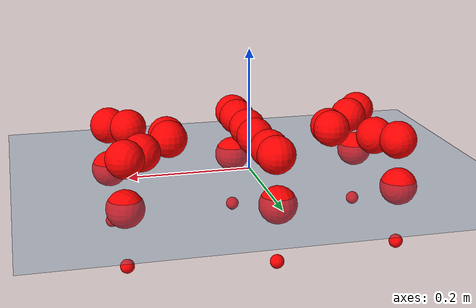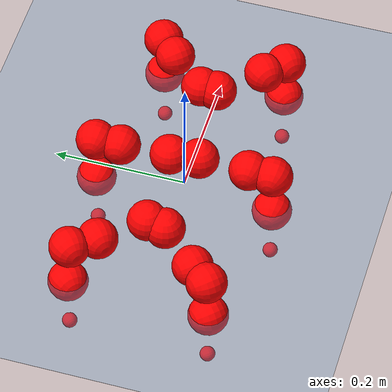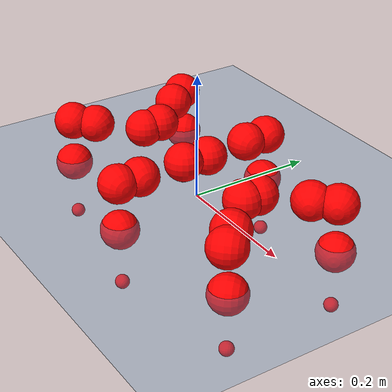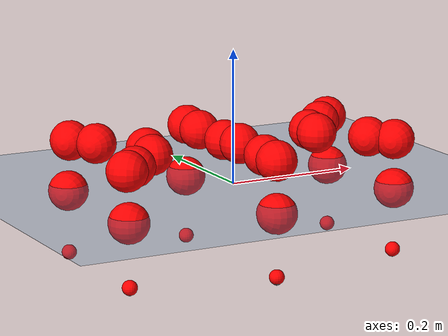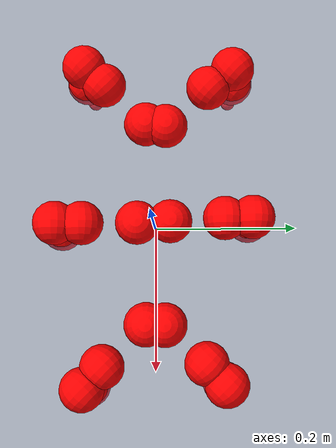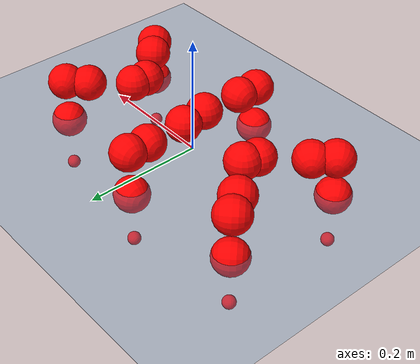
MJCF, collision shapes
<mujoco model="Golem">
  <compiler angle="radian" assetdir="assets" balanceinertia="true" inertiafromgeom="false"/>

  <option timestep="0.005" density="1.2" viscosity="2e-05"/>

  <size nkey="1"/>

  <visual>
    <quality shadowsize="8192"/>
    <map shadowclip="0.5"/>
  </visual>

  <default>
    <default class="/">
      <joint armature="0.01" damping="0.01" frictionloss="0.01"/>
      <geom contype="0" conaffinity="0" group="1" solref="-1000 -80"/>
      <site size="0.01 0.005 0.005" group="5"/>
      <general forcelimited="true" biastype="affine" gainprm="25" biasprm="0 -25 -0.5"/>
      <default class="visual">
        <geom type="mesh" group="2"/>
      </default>
      <default class="collision">
        <geom group="3"/>
      </default>
      <default class="foot">
        <geom size="0.01 0 0" condim="6" group="4" priority="1" solimp="0.015 1 0.01"/>
      </default>
      <default class="reward_collision_sphere">
        <geom group="5" rgba="1 0 0 1"/>
      </default>
    </default>
  </default>

  <asset>
    <texture type="skybox" colorspace="auto" name="//unnamed_texture_0" builtin="gradient" rgb1="0.95 0.95 0.95" rgb2="0.95 0.95 0.95" width="100" height="600"/>
    <texture type="2d" colorspace="auto" name="texplane" builtin="checker" rgb1="0.345 0.575 0.748" rgb2="0.345 0.575 0.748" markrgb="1 1 1" width="512" height="512"/>
    <material name="MatPlane" class="/" texture="texplane" texuniform="true" texrepeat="2 2" specular="0.9"/>
    <mesh name="body" class="/" file="body.stl" scale="0.001 0.001 0.001"/>
    <mesh name="coxa" class="/" file="coxa.stl" scale="0.001 0.001 0.001"/>
    <mesh name="femur" class="/" file="femur.stl" scale="0.001 0.001 0.001"/>
    <mesh name="tibia" class="/" file="tibia.stl" scale="0.001 0.001 0.001"/>
    <mesh name="tarsus" class="/" file="tarsus.stl" scale="0.001 0.001 0.001"/>
  </asset>

  <worldbody>
    <geom name="floor" class="/" size="100 100 0.125" type="plane" group="0" material="MatPlane"/>
    <light name="toplight_shadow" class="/" pos="0 0 5" dir="0.0990148 0.0990148 -0.990148" type="directional" ambient="0.04 0.04 0.04" diffuse="0.55 0.55 0.55" specular="0.12 0.12 0.12"/>
    <light name="toplight_fill" class="/" pos="0 0 5" dir="0.0990148 0.0990148 -0.990148" type="directional" castshadow="false" ambient="0.04 0.04 0.04" diffuse="0.3 0.3 0.3" specular="0.08 0.08 0.08"/>
    <body name="trunk" pos="-1.48784e-05 8.68853e-05 -0.000195402" quat="1 0.000282786 -0.000629352 -0.000675842">
      <inertial pos="0.00104817 -0.000814944 -0.00230932" quat="1 0.00025899 -0.000699304 -9.91324e-05" mass="1.57842" diaginertia="0.00507213 6.55689e-05 0.0098257"/>
      <joint name="//unnamed_joint_0" type="free"/>
      <geom name="//unnamed_geom_1" class="/" pos="0 0 0.063874" quat="1 0 0 0" type="mesh" rgba="0.9 0.9 0.9 1" mesh="body"/>
      <site name="imu" class="/" pos="0.125085 -0.0122272 0.1025" size="0.00747432"/>
      <camera name="track" class="/" pos="0 -0.737906 0" quat="0.707107 0.707107 0 0" mode="trackcom"/>
      <camera name="ego_camera" class="/" pos="0.113791 0 0.0998032" quat="-0.5 -0.5 0.5 0.5"/>
      <body name="coxa_RR" pos="-0.156821 -0.0299311 0.0608181" quat="0.383082 0.00084715 0.000250851 -0.923714">
        <inertial pos="5.40004e-05 3.71193e-05 0.0030623" quat="0.999911 0.00879549 0.00960805 -0.00289237" mass="0.0869785" diaginertia="0.00532454 7.10768e-05 0.0102487"/>
        <joint name="coxa_joint_RR" class="/" pos="0 0 0" axis="-0.000367868 -0.00493898 -0.999988" range="-3.195 3.08889" armature="0.00749531" damping="0.0142833" frictionloss="0.00840557"/>
        <geom name="//unnamed_geom_2" class="/" type="mesh" rgba="0.2 0.2 0.2 1" mesh="coxa"/>
        <geom name="//unnamed_geom_3" class="reward_collision_sphere" size="0.0298973" pos="-0.0262594 0 0"/>
        <body name="femur_RR" pos="0.0535051 0.00132624 0.000839768" quat="0.500043 -0.499659 0.500374 0.499924">
          <inertial pos="0.000748142 -0.000434578 0.000512818" quat="0.999992 -2.35177e-05 -0.00317414 0.00251694" mass="0.0831586" diaginertia="0.00526796 7.03453e-05 0.00984663"/>
          <joint name="femur_joint_RR" class="/" pos="0 0 0" axis="0.00879437 0.00578007 -0.999945" range="-3.08929 3.13497" armature="0.00643023" damping="0" frictionloss="0.00728218"/>
          <geom name="//unnamed_geom_4" class="/" type="mesh" rgba="0.9 0.9 0.9 1" mesh="femur"/>
          <geom name="//unnamed_geom_5" class="reward_collision_sphere" size="0.0298973"/>
          <body name="tibia_RR" pos="-0.00236264 -0.0376831 0.00188678" quat="-0.0011859 0.999999 0.000253993 0.000640333">
            <inertial pos="0.00291009 0.00256673 -0.00122309" quat="0.99999 0.00294478 0.00239069 0.00219973" mass="0.0862527" diaginertia="0.00508452 6.8159e-05 0.00954623"/>
            <joint name="tibia_joint_RR" class="/" pos="0 0 0" axis="0.00697745 -0.00995042 0.999926" range="-3.09162 3.13278" armature="0.00650082" damping="0" frictionloss="0.00782948"/>
            <geom name="//unnamed_geom_6" class="/" type="mesh" rgba="0.2 0.2 0.2 1" mesh="tibia"/>
            <geom name="//unnamed_geom_7" class="reward_collision_sphere" size="0.0298973"/>
            <body name="tarsus_RR" pos="0.0742895 0.00187985 -0.00242684" quat="1 0.000424867 -0.000442065 -0.000140278">
              <inertial pos="0.0502637 0.00127328 -0.001098" quat="0.500411 0.500118 0.499767 0.499703" mass="0.0872691" diaginertia="0.00541375 6.82043e-05 0.0105159"/>
              <joint name="tarsus_joint_RR" class="/" pos="0 0 0" axis="0.00742521 -0.0111182 0.999911" stiffness="0.00316174" range="-3.17703 3.15646" armature="0.00754538" damping="0" frictionloss="0.00718945"/>
              <geom name="//unnamed_geom_8" class="/" type="mesh" rgba="0.9 0.9 0.9 1" mesh="tarsus"/>
              <geom name="foot_1" class="foot" size="0.00756791" pos="0.098035 0 0" quat="0 -0.707107 0 0.707107"/>
              <geom name="//unnamed_geom_10" class="reward_collision_sphere" size="0.0298973"/>
              <geom name="//unnamed_geom_11" class="reward_collision_sphere" size="0.0112115" pos="0.0940961 0 0"/>
              <site name="foot_1" class="foot" pos="0.098035 0 0" quat="0 -0.707107 0 0.707107" size="0.00747432"/>
            </body>
          </body>
        </body>
      </body>
      <body name="coxa_RM" pos="-0.00152791 -0.0490927 0.0652366" quat="0.707972 0.000337513 -0.00030353 -0.70624">
        <inertial pos="0.00217622 -0.00250604 0.00209702" quat="0.99999 -0.00322607 0.00190774 0.00227177" mass="0.0805232" diaginertia="0.00497488 6.85085e-05 0.00985447"/>
        <joint name="coxa_joint_RM" class="/" pos="0 0 0" axis="-0.00607758 0.0118653 -0.999911" stiffness="0.000120874" range="-3.13768 3.19369" armature="0.00822623" damping="0.000823783" frictionloss="0.00643927"/>
        <geom name="//unnamed_geom_12" class="/" type="mesh" rgba="0.2 0.2 0.2 1" mesh="coxa"/>
        <geom name="//unnamed_geom_13" class="reward_collision_sphere" size="0.0298973" pos="-0.0262594 0 0"/>
        <body name="femur_RM" pos="0.0490465 -0.000233656 -0.00186546" quat="0.499964 -0.500114 0.499975 0.499946">
          <inertial pos="0.00263589 -0.000327086 -0.000586583" quat="0.999999 -0.000491536 -0.000938035 0.000305204" mass="0.0882732" diaginertia="0.00516719 6.93668e-05 0.0100382"/>
          <joint name="femur_joint_RM" class="/" pos="0 0 0" axis="-0.00478405 0.000936619 -0.999988" range="-3.18127 3.13908" armature="0.00766494" damping="0.0188752" frictionloss="0.00848872"/>
          <geom name="//unnamed_geom_14" class="/" type="mesh" rgba="0.9 0.9 0.9 1" mesh="femur"/>
          <geom name="//unnamed_geom_15" class="reward_collision_sphere" size="0.0298973"/>
          <body name="tibia_RM" pos="0.000761352 -0.0366807 -0.000650796" quat="-0.000298663 1 -0.00049462 0.00013187">
            <inertial pos="0.0013754 -0.00286815 -0.0026721" quat="0.999907 0.0117392 0.000931287 0.00684673" mass="0.0842278" diaginertia="0.00531012 6.79796e-05 0.0102594"/>
            <joint name="tibia_joint_RM" class="/" pos="0 0 0" axis="0.000158331 0.000196994 1" range="-3.15398 3.10751" armature="0.00833998" damping="0.0138778" frictionloss="0.00826023"/>
            <geom name="//unnamed_geom_16" class="/" type="mesh" rgba="0.2 0.2 0.2 1" mesh="tibia"/>
            <geom name="//unnamed_geom_17" class="reward_collision_sphere" size="0.0298973"/>
            <body name="tarsus_RM" pos="0.0778142 0.000406589 -0.000584044" quat="1 -8.03194e-05 -6.62982e-05 4.65777e-05">
              <inertial pos="0.0555415 -0.000481238 0.000963687" quat="0.510419 0.500779 0.496756 0.491861" mass="0.0827713" diaginertia="0.00526031 6.96266e-05 0.00956116"/>
              <joint name="tarsus_joint_RM" class="/" pos="0 0 0" axis="0.000260274 -0.000895931 1" range="-3.092 3.17977" armature="0.00824666" damping="0.00786382" frictionloss="0.00730406"/>
              <geom name="//unnamed_geom_18" class="/" type="mesh" rgba="0.9 0.9 0.9 1" mesh="tarsus"/>
              <geom name="foot_2" class="foot" size="0.00820096" pos="0.098035 0 0" quat="0 -0.707107 0 0.707107"/>
              <geom name="//unnamed_geom_20" class="reward_collision_sphere" size="0.0298973"/>
              <geom name="//unnamed_geom_21" class="reward_collision_sphere" size="0.0112115" pos="0.0940961 0 0"/>
              <site name="foot_2" class="foot" pos="0.098035 0 0" quat="0 -0.707107 0 0.707107" size="0.00747432"/>
            </body>
          </body>
        </body>
      </body>
      <body name="coxa_RF" pos="0.153593 -0.0293701 0.0644036" quat="0.923986 -2.63676e-05 1.33062e-05 -0.382426">
        <inertial pos="-0.00260458 -0.0018071 0.00305637" quat="0.999904 -0.000170055 0.00372194 0.0133529" mass="0.0832964" diaginertia="0.00532856 6.80228e-05 0.00993803"/>
        <joint name="coxa_joint_RF" class="/" pos="0 0 0" axis="-0.00403283 0.000405599 -0.999992" range="-3.17129 3.18852" armature="0.00650948" damping="0.00968753" frictionloss="0.00787276"/>
        <geom name="//unnamed_geom_22" class="/" type="mesh" rgba="0.2 0.2 0.2 1" mesh="coxa"/>
        <geom name="//unnamed_geom_23" class="reward_collision_sphere" size="0.0298973" pos="-0.0262594 0 0"/>
        <body name="femur_RF" pos="0.0535076 -0.00235089 0.00016399" quat="0.499278 -0.500841 0.50034 0.499539">
          <inertial pos="-0.000457147 -0.00295009 0.00257265" quat="0.99993 0.00674121 0.00293181 0.00929515" mass="0.0830762" diaginertia="0.00493716 6.59149e-05 0.00989374"/>
          <joint name="femur_joint_RF" class="/" pos="0 0 0" axis="-0.000820502 0.00445144 -0.99999" range="-3.08498 3.13913" armature="0.00730492" damping="0" frictionloss="0.00652306"/>
          <geom name="//unnamed_geom_24" class="/" type="mesh" rgba="0.9 0.9 0.9 1" mesh="femur"/>
          <geom name="//unnamed_geom_25" class="reward_collision_sphere" size="0.0298973"/>
          <body name="tibia_RF" pos="0.00178412 -0.0397356 0.00199566" quat="0.000543972 0.999999 0.00129408 -0.000378311">
            <inertial pos="0.000266387 0.00263545 -0.00125736" quat="0.999908 -0.0066401 0.000246563 -0.0118338" mass="0.0847046" diaginertia="0.0052192 6.82915e-05 0.00993208"/>
            <joint name="tibia_joint_RF" class="/" pos="0 0 0" axis="-0.0101836 0.00732203 0.999921" stiffness="0.00340945" range="-3.12997 3.12645" armature="0.00713074" damping="0.000766133" frictionloss="0.0074571"/>
            <geom name="//unnamed_geom_26" class="/" type="mesh" rgba="0.2 0.2 0.2 1" mesh="tibia"/>
            <geom name="//unnamed_geom_27" class="reward_collision_sphere" size="0.0298973"/>
            <body name="tarsus_RF" pos="0.0750998 -0.000234998 -0.00192429" quat="0.999999 0.000237027 -0.00118569 -0.000513361">
              <inertial pos="0.0501476 0.000894195 0.00202524" quat="0.508714 0.492801 0.504894 0.493395" mass="0.0785653" diaginertia="0.00513874 6.71043e-05 0.00952716"/>
              <joint name="tarsus_joint_RF" class="/" pos="0 0 0" axis="-0.0123607 -0.00336584 0.999918" range="-3.09279 3.13697" armature="0.0074119" damping="0.00667813" frictionloss="0.0084867"/>
              <geom name="//unnamed_geom_28" class="/" type="mesh" rgba="0.9 0.9 0.9 1" mesh="tarsus"/>
              <geom name="foot_3" class="foot" size="0.00753573" pos="0.098035 0 0" quat="0 -0.707107 0 0.707107"/>
              <geom name="//unnamed_geom_30" class="reward_collision_sphere" size="0.0298973"/>
              <geom name="//unnamed_geom_31" class="reward_collision_sphere" size="0.0112115" pos="0.0940961 0 0"/>
              <site name="foot_3" class="foot" pos="0.098035 0 0" quat="0 -0.707107 0 0.707107" size="0.00747432"/>
            </body>
          </body>
        </body>
      </body>
      <body name="coxa_LR" pos="-0.153307 0.0348346 0.0646907" quat="0.383234 0.000911805 0.000866378 0.923651">
        <inertial pos="0.00285709 -0.000340576 -0.00223878" quat="0.999902 -0.00504786 -0.00421029 -0.0123807" mass="0.084292" diaginertia="0.00508433 6.90203e-05 0.00999654"/>
        <joint name="coxa_joint_LR" class="/" pos="0 0 0" axis="0.00942163 0.00325012 -0.99995" range="-3.12775 3.11881" armature="0.00695576" damping="0.00250465" frictionloss="0.00731045"/>
        <geom name="//unnamed_geom_32" class="/" type="mesh" rgba="0.2 0.2 0.2 1" mesh="coxa"/>
        <geom name="//unnamed_geom_33" class="reward_collision_sphere" size="0.0298973" pos="-0.0262594 0 0"/>
        <body name="femur_LR" pos="0.0523458 -0.00355686 0.000926046" quat="0.500448 -0.500069 0.500563 0.498918">
          <inertial pos="0.000889256 0.000527448 -0.00108583" quat="0.999998 -0.000624904 -0.00100687 -0.00162497" mass="0.0855261" diaginertia="0.00520947 6.94553e-05 0.0102579"/>
          <joint name="femur_joint_LR" class="/" pos="0 0 0" axis="0.00180909 -0.00271223 0.999995" range="-3.10002 3.17652" armature="0.00791254" damping="0" frictionloss="0.00825713"/>
          <geom name="//unnamed_geom_34" class="/" type="mesh" rgba="0.9 0.9 0.9 1" mesh="femur"/>
          <geom name="//unnamed_geom_35" class="reward_collision_sphere" size="0.0298973"/>
          <body name="tibia_LR" pos="-0.00048347 -0.0429147 -0.00523561" quat="-0.000438634 1 -0.000243909 -1.4715e-05">
            <inertial pos="0.00096612 -0.00293681 0.00306809" quat="1 9.92335e-05 0.000107541 0.000293893" mass="0.0819467" diaginertia="0.00519547 7.13901e-05 0.00998379"/>
            <joint name="tibia_joint_LR" class="/" pos="0 0 0" axis="-0.00718566 -0.00150831 -0.999973" range="-3.13346 3.08555" armature="0.00661198" damping="0.00997111" frictionloss="0.00665675"/>
            <geom name="//unnamed_geom_36" class="/" type="mesh" rgba="0.2 0.2 0.2 1" mesh="tibia"/>
            <geom name="//unnamed_geom_37" class="reward_collision_sphere" size="0.0298973"/>
            <body name="tarsus_LR" pos="0.0764531 0.00401499 0.000521455" quat="1 1.1799e-05 -4.00079e-05 -1.86933e-05">
              <inertial pos="0.0520412 -0.00118062 0.000363325" quat="0.500668 0.499536 0.500056 0.49974" mass="0.0832545" diaginertia="0.00509467 6.6859e-05 0.00986382"/>
              <joint name="tarsus_joint_LR" class="/" pos="0 0 0" axis="0.00150945 -0.00533969 -0.999985" range="-3.08978 3.14156" armature="0.0075909" damping="0.00244053" frictionloss="0.00709513"/>
              <geom name="//unnamed_geom_38" class="/" type="mesh" rgba="0.9 0.9 0.9 1" mesh="tarsus"/>
              <geom name="foot_4" class="foot" size="0.00676536" pos="0.098035 0 0" quat="0.707107 0 -0.707107 0"/>
              <geom name="//unnamed_geom_40" class="reward_collision_sphere" size="0.0298973"/>
              <geom name="//unnamed_geom_41" class="reward_collision_sphere" size="0.0112115" pos="0.0940961 0 0"/>
              <site name="foot_4" class="foot" pos="0.098035 0 0" quat="0.707107 0 -0.707107 0" size="0.00747432"/>
            </body>
          </body>
        </body>
      </body>
      <body name="coxa_LM" pos="-0.00361668 0.0479591 0.0620519" quat="0.707061 -0.00097113 -0.000227486 0.707151">
        <inertial pos="-0.000891798 6.81771e-05 0.00286783" quat="0.999986 -0.00378957 -0.00304351 -0.00212842" mass="0.0845186" diaginertia="0.00539722 6.98909e-05 0.0103522"/>
        <joint name="coxa_joint_LM" class="/" pos="0 0 0" axis="0.00108997 -0.00155875 -0.999998" stiffness="0.0063592" range="-3.1951 3.15072" armature="0.00637062" damping="0.00116228" frictionloss="0.00852126"/>
        <geom name="//unnamed_geom_42" class="/" type="mesh" rgba="0.2 0.2 0.2 1" mesh="coxa"/>
        <geom name="//unnamed_geom_43" class="reward_collision_sphere" size="0.0298973" pos="-0.0262594 0 0"/>
        <body name="femur_LM" pos="0.047848 0.00372731 0.00137024" quat="0.500015 -0.499895 0.500224 0.499866">
          <inertial pos="-0.000584181 -0.00290404 -0.000191538" quat="0.999923 -0.0100392 -0.00669816 0.00285417" mass="0.0783621" diaginertia="0.00497088 6.64979e-05 0.00959801"/>
          <joint name="femur_joint_LM" class="/" pos="0 0 0" axis="0.0072091 -0.0098568 0.999925" range="-3.14376 3.15848" armature="0.0066564" damping="0.00873065" frictionloss="0.00844911"/>
          <geom name="//unnamed_geom_44" class="/" type="mesh" rgba="0.9 0.9 0.9 1" mesh="femur"/>
          <geom name="//unnamed_geom_45" class="reward_collision_sphere" size="0.0298973"/>
          <body name="tibia_LM" pos="-0.000938967 -0.0381193 0.00120126" quat="0.000296523 1 9.91324e-05 -0.000191727">
            <inertial pos="-0.00225611 0.000985172 -0.000984549" quat="1 0.000267666 0.000166155 -3.11988e-05" mass="0.0857508" diaginertia="0.00492042 6.79781e-05 0.00970148"/>
            <joint name="tibia_joint_LM" class="/" pos="0 0 0" axis="-0.00137263 0.000194176 -0.999999" range="-3.08419 3.13551" armature="0.00725952" damping="0" frictionloss="0.00659536"/>
            <geom name="//unnamed_geom_46" class="/" type="mesh" rgba="0.2 0.2 0.2 1" mesh="tibia"/>
            <geom name="//unnamed_geom_47" class="reward_collision_sphere" size="0.0298973"/>
            <body name="tarsus_LM" pos="0.0801574 -0.000390787 -0.00339516" quat="1 -7.48135e-05 -0.000384274 -0.000162387">
              <inertial pos="0.050621 -0.000343681 -0.000199783" quat="0.497079 0.500711 0.498192 0.50399" mass="0.0798711" diaginertia="0.00501573 6.752e-05 0.0101295"/>
              <joint name="tarsus_joint_LM" class="/" pos="0 0 0" axis="-0.0124649 0.00179879 -0.999921" range="-3.13414 3.08301" armature="0.00748823" damping="0.0124129" frictionloss="0.0064342"/>
              <geom name="//unnamed_geom_48" class="/" type="mesh" rgba="0.9 0.9 0.9 1" mesh="tarsus"/>
              <geom name="foot_5" class="foot" size="0.00724835" pos="0.098035 0 0" quat="0.707107 0 -0.707107 0"/>
              <geom name="//unnamed_geom_50" class="reward_collision_sphere" size="0.0298973"/>
              <geom name="//unnamed_geom_51" class="reward_collision_sphere" size="0.0112115" pos="0.0940961 0 0"/>
              <site name="foot_5" class="foot" pos="0.098035 0 0" quat="0.707107 0 -0.707107 0" size="0.00747432"/>
            </body>
          </body>
        </body>
      </body>
      <body name="coxa_LF" pos="0.154204 0.0329102 0.0649011" quat="0.923896 -0.000379289 -0.000976742 0.382643">
        <inertial pos="0.00146018 -0.00263542 0.000798724" quat="1 -1.97501e-05 0.00033055 -0.000790838" mass="0.0807956" diaginertia="0.00497438 6.37226e-05 0.00956286"/>
        <joint name="coxa_joint_LF" class="/" pos="0 0 0" axis="-0.00451221 -0.00573599 -0.999973" range="-3.19387 3.11812" armature="0.00761125" damping="0" frictionloss="0.00827585"/>
        <geom name="//unnamed_geom_52" class="/" type="mesh" rgba="0.2 0.2 0.2 1" mesh="coxa"/>
        <geom name="//unnamed_geom_53" class="reward_collision_sphere" size="0.0298973" pos="-0.0262594 0 0"/>
        <body name="femur_LF" pos="0.0489112 0.00288926 -0.00215943" quat="0.499573 -0.499511 0.501179 0.499735">
          <inertial pos="-0.000169542 -0.000533892 0.00103082" quat="0.999949 0.00566197 0.00833415 0.000885447" mass="0.0828062" diaginertia="0.00507375 6.57486e-05 0.0095242"/>
          <joint name="femur_joint_LF" class="/" pos="0 0 0" axis="0.0127307 0.00700507 0.999894" range="-3.14797 3.10292" armature="0.00781564" damping="0.0126617" frictionloss="0.0067791"/>
          <geom name="//unnamed_geom_54" class="/" type="mesh" rgba="0.9 0.9 0.9 1" mesh="femur"/>
          <geom name="//unnamed_geom_55" class="reward_collision_sphere" size="0.0298973"/>
          <body name="tibia_LF" pos="0.0001112 -0.0387998 -0.00109545" quat="-3.25078e-06 1 -2.00659e-05 -3.31997e-05">
            <inertial pos="-0.000444969 0.000651909 -0.000205989" quat="0.999947 0.00662386 -0.00552865 -0.00567056" mass="0.0863825" diaginertia="0.00511562 6.66615e-05 0.00964019"/>
            <joint name="tibia_joint_LF" class="/" pos="0 0 0" axis="0.00399402 -0.013549 -0.9999" stiffness="0.00717747" range="-3.18276 3.12656" armature="0.00833748" damping="0.0123541" frictionloss="0.00646864"/>
            <geom name="//unnamed_geom_56" class="/" type="mesh" rgba="0.2 0.2 0.2 1" mesh="tibia"/>
            <geom name="//unnamed_geom_57" class="reward_collision_sphere" size="0.0298973"/>
            <body name="tarsus_LF" pos="0.0788718 0.0008301 0.00156213" quat="1 2.74578e-06 5.44873e-06 -4.76488e-06">
              <inertial pos="0.0515109 6.55342e-05 0.00221489" quat="0.500158 0.500003 0.499978 0.499861" mass="0.0829314" diaginertia="0.00509148 6.73033e-05 0.00961999"/>
              <joint name="tarsus_joint_LF" class="/" pos="0 0 0" axis="0.00562627 0.0144199 -0.99988" stiffness="0.028009" range="-3.13754 3.18669" armature="0.00739874" damping="0.0231309" frictionloss="0.00707789"/>
              <geom name="//unnamed_geom_58" class="/" type="mesh" rgba="0.9 0.9 0.9 1" mesh="tarsus"/>
              <geom name="foot_6" class="foot" size="0.00727261" pos="0.098035 0 0" quat="0.707107 0 -0.707107 0"/>
              <geom name="//unnamed_geom_60" class="reward_collision_sphere" size="0.0298973"/>
              <geom name="//unnamed_geom_61" class="reward_collision_sphere" size="0.0112115" pos="0.0940961 0 0"/>
              <site name="foot_6" class="foot" pos="0.098035 0 0" quat="0.707107 0 -0.707107 0" size="0.00747432"/>
            </body>
          </body>
        </body>
      </body>
    </body>
  </worldbody>

  <contact>
    <pair class="/" geom1="floor" geom2="foot_1" name="//unnamed_contact_0"/>
    <pair class="/" geom1="floor" geom2="foot_2" name="//unnamed_contact_1"/>
    <pair class="/" geom1="floor" geom2="foot_3" name="//unnamed_contact_2"/>
    <pair class="/" geom1="floor" geom2="foot_4" name="//unnamed_contact_3"/>
    <pair class="/" geom1="floor" geom2="foot_5" name="//unnamed_contact_4"/>
    <pair class="/" geom1="floor" geom2="foot_6" name="//unnamed_contact_5"/>
  </contact>

  <actuator>
    <general name="coxa_joint_RR" class="/" joint="coxa_joint_RR" forcerange="-6.02513 6.02513" gainprm="17.4598" biasprm="0 -17.4598 -0.363742"/>
    <general name="femur_joint_RR" class="/" joint="femur_joint_RR" forcerange="-5.78026 5.78026" gainprm="17.4598" biasprm="0 -17.4598 -0.363742"/>
    <general name="tibia_joint_RR" class="/" joint="tibia_joint_RR" forcerange="-5.49596 5.49596" gainprm="17.4598" biasprm="0 -17.4598 -0.363742"/>
    <general name="tarsus_joint_RR" class="/" joint="tarsus_joint_RR" forcerange="-5.31322 5.31322" gainprm="17.4598" biasprm="0 -17.4598 -0.363742"/>
    <general name="coxa_joint_RM" class="/" joint="coxa_joint_RM" forcerange="-6.02731 6.02731" gainprm="17.4598" biasprm="0 -17.4598 -0.363742"/>
    <general name="femur_joint_RM" class="/" joint="femur_joint_RM" forcerange="-6.0228 6.0228" gainprm="17.4598" biasprm="0 -17.4598 -0.363742"/>
    <general name="tibia_joint_RM" class="/" joint="tibia_joint_RM" forcerange="-5.10639 5.10639" gainprm="17.4598" biasprm="0 -17.4598 -0.363742"/>
    <general name="tarsus_joint_RM" class="/" joint="tarsus_joint_RM" forcerange="-5.89348 5.89348" gainprm="17.4598" biasprm="0 -17.4598 -0.363742"/>
    <general name="coxa_joint_RF" class="/" joint="coxa_joint_RF" forcerange="-5.98167 5.98167" gainprm="17.4598" biasprm="0 -17.4598 -0.363742"/>
    <general name="femur_joint_RF" class="/" joint="femur_joint_RF" forcerange="-4.93469 4.93469" gainprm="17.4598" biasprm="0 -17.4598 -0.363742"/>
    <general name="tibia_joint_RF" class="/" joint="tibia_joint_RF" forcerange="-5.15824 5.15824" gainprm="17.4598" biasprm="0 -17.4598 -0.363742"/>
    <general name="tarsus_joint_RF" class="/" joint="tarsus_joint_RF" forcerange="-5.34404 5.34404" gainprm="17.4598" biasprm="0 -17.4598 -0.363742"/>
    <general name="coxa_joint_LR" class="/" joint="coxa_joint_LR" forcerange="-5.86842 5.86842" gainprm="17.4598" biasprm="0 -17.4598 -0.363742"/>
    <general name="femur_joint_LR" class="/" joint="femur_joint_LR" forcerange="-4.89849 4.89849" gainprm="17.4598" biasprm="0 -17.4598 -0.363742"/>
    <general name="tibia_joint_LR" class="/" joint="tibia_joint_LR" forcerange="-5.13253 5.13253" gainprm="17.4598" biasprm="0 -17.4598 -0.363742"/>
    <general name="tarsus_joint_LR" class="/" joint="tarsus_joint_LR" forcerange="-5.67686 5.67686" gainprm="17.4598" biasprm="0 -17.4598 -0.363742"/>
    <general name="coxa_joint_LM" class="/" joint="coxa_joint_LM" forcerange="-5.41943 5.41943" gainprm="17.4598" biasprm="0 -17.4598 -0.363742"/>
    <general name="femur_joint_LM" class="/" joint="femur_joint_LM" forcerange="-5.47037 5.47037" gainprm="17.4598" biasprm="0 -17.4598 -0.363742"/>
    <general name="tibia_joint_LM" class="/" joint="tibia_joint_LM" forcerange="-5.01317 5.01317" gainprm="17.4598" biasprm="0 -17.4598 -0.363742"/>
    <general name="tarsus_joint_LM" class="/" joint="tarsus_joint_LM" forcerange="-5.48937 5.48937" gainprm="17.4598" biasprm="0 -17.4598 -0.363742"/>
    <general name="coxa_joint_LF" class="/" joint="coxa_joint_LF" forcerange="-6.02 6.02" gainprm="17.4598" biasprm="0 -17.4598 -0.363742"/>
    <general name="femur_joint_LF" class="/" joint="femur_joint_LF" forcerange="-6.01048 6.01048" gainprm="17.4598" biasprm="0 -17.4598 -0.363742"/>
    <general name="tibia_joint_LF" class="/" joint="tibia_joint_LF" forcerange="-5.36158 5.36158" gainprm="17.4598" biasprm="0 -17.4598 -0.363742"/>
    <general name="tarsus_joint_LF" class="/" joint="tarsus_joint_LF" forcerange="-5.42481 5.42481" gainprm="17.4598" biasprm="0 -17.4598 -0.363742"/>
  </actuator>

  <sensor>
    <gyro site="imu" name="imu_angular_velocity"/>
    <velocimeter site="imu" name="imu_linear_velocity"/>
    <framelinvel objtype="site" objname="foot_1" name="foot_1_global_linear_velocity"/>
    <framelinvel objtype="site" objname="foot_2" name="foot_2_global_linear_velocity"/>
    <framelinvel objtype="site" objname="foot_3" name="foot_3_global_linear_velocity"/>
    <framelinvel objtype="site" objname="foot_4" name="foot_4_global_linear_velocity"/>
    <framelinvel objtype="site" objname="foot_5" name="foot_5_global_linear_velocity"/>
    <framelinvel objtype="site" objname="foot_6" name="foot_6_global_linear_velocity"/>
  </sensor>

  <keyframe>
    <key name="home" qpos="0 0 0.1457 1 0 0 0 0 0 0 0 0 0 0 0 0 0 0 0 0 0 0 0 0 0 0 0 0 0 0 0"/>
  </keyframe>
</mujoco>
